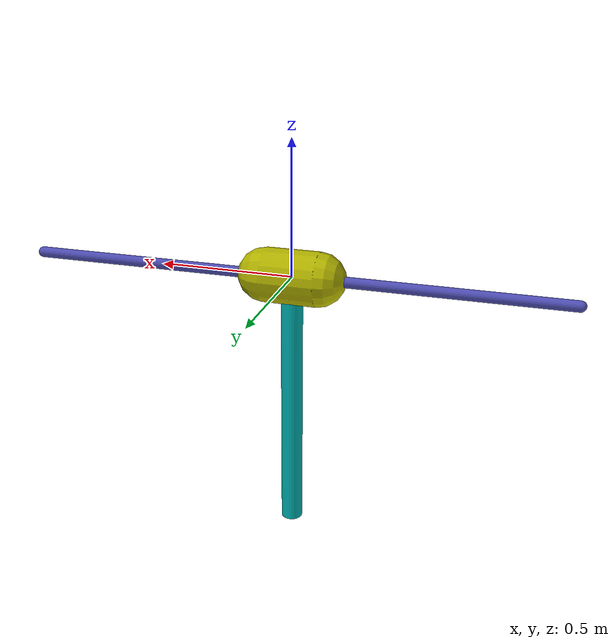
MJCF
<mujoco model="inverted pendulum">
	<compiler inertiafromgeom="true"/>
	<default>
		<joint armature="0" damping="1" limited="false"/>
		<geom contype="0" friction="1 0.1 0.1" rgba="0.7 0.7 0 1"/>
		<tendon/>
		<motor ctrlrange="-3 3"/>
	</default>
	<option gravity="0 0 -9.81" integrator="RK4" timestep="0.02"/>
	<size nstack="300"/>
	<worldbody>
		<!--geom name="ground" type="plane" pos="0 0 0" /-->
		<geom name="rail" pos="0 0 0" quat="0.707 0 0.707 0" rgba="0.3 0.3 0.7 1" size="0.02 1" type="capsule"/>
		<body name="cart" pos="0 0 0">
			<joint axis="1 0 0" limited="true" name="slider" pos="0 0 0" range="-1 1" type="slide"/>
			<geom name="cart" pos="0 0 0" quat="0.707 0 0.707 0" size="0.1 0.1" type="capsule"/>
			<body name="pole" pos="0 0 0">
				<joint axis="0 1 0" name="hinge" pos="0 0 0" range="-180 180" type="hinge"/>
				<geom pos="0 0 -0.5" size="0.04 0.5" type="cylinder" name="cpole" rgba="0 0.7 0.7 1" euler="0 0 0"/>
			</body>
		</body>
	</worldbody>
	<actuator>
		<motor ctrllimited="true" ctrlrange="-3 3" gear="100" joint="slider" name="slide"/>
	</actuator>
</mujoco>
